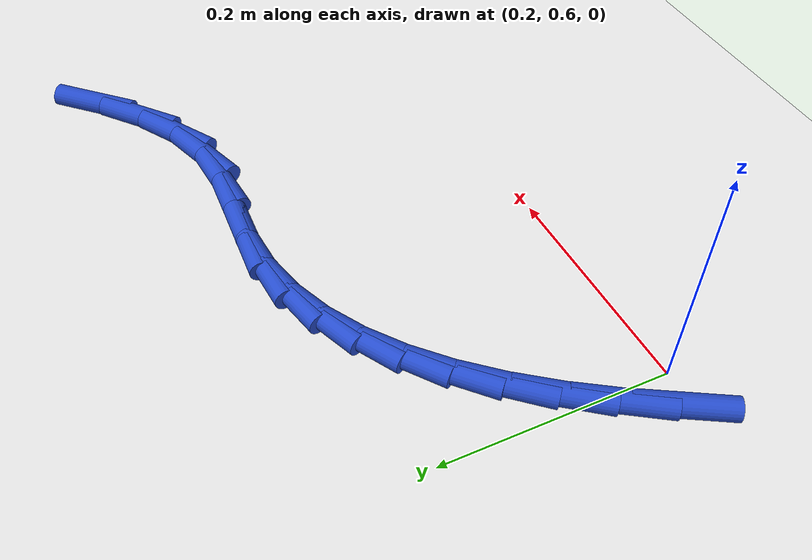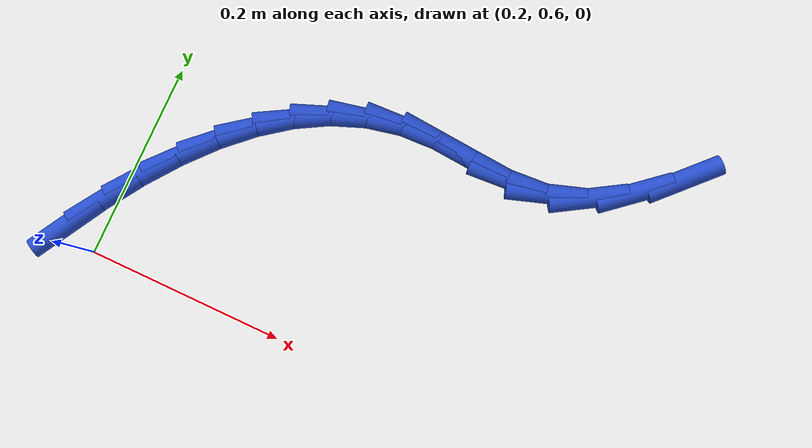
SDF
<sdf version="1.6">
 <world name="default">
  <model name="ground_plane">
   <static>1</static>
   <link name="link">
    <collision name="collision">
     <geometry><plane><normal>0 0 1</normal><size>100 100</size></plane></geometry>
     <surface><friction><ode><mu>100</mu><mu2>50</mu2></ode></friction></surface>
    </collision>
    <visual name="visual">
     <cast_shadows>0</cast_shadows>
     <geometry><plane><normal>0 0 1</normal><size>100 100</size></plane></geometry>
     <material>
      <script><uri>file://media/materials/scripts/gazebo.material</uri><name>Gazebo/WhiteGlow</name></script>
     </material>
    </visual>
   </link>
  </model>
  <model name="line">
   <link name="link_15">
    <pose>0.16536874746062305 0.6122908761863125 0.01 0 1.57 1.0538134935856716</pose>
    <collision name="collision">
     <geometry><cylinder><radius>0.01</radius><length>0.08</length></cylinder></geometry>
    </collision>
    <visual name="visual">
     <material>
      <script><name>Gazebo/Blue</name><uri>file://media/materials/scripts/gazebo.material</uri></script>
     </material>
     <geometry><cylinder><radius>0.01</radius><length>0.08</length></cylinder></geometry>
    </visual>
   </link>
   <link name="link_16">
    <pose>0.18751137461381603 0.6512358101997353 0.01 0 1.57 0.9973250395359933</pose>
    <collision name="collision">
     <geometry><cylinder><radius>0.01</radius><length>0.08</length></cylinder></geometry>
    </collision>
    <visual name="visual">
     <material>
      <script><name>Gazebo/Blue</name><uri>file://media/materials/scripts/gazebo.material</uri></script>
     </material>
     <geometry><cylinder><radius>0.01</radius><length>0.08</length></cylinder></geometry>
    </visual>
   </link>
   <link name="link_17">
    <pose>0.21118163012247643 0.6878840547240713 0.01 0 1.57 0.9309242295682887</pose>
    <collision name="collision">
     <geometry><cylinder><radius>0.01</radius><length>0.08</length></cylinder></geometry>
    </collision>
    <visual name="visual">
     <material>
      <script><name>Gazebo/Blue</name><uri>file://media/materials/scripts/gazebo.material</uri></script>
     </material>
     <geometry><cylinder><radius>0.01</radius><length>0.08</length></cylinder></geometry>
    </visual>
   </link>
   <link name="link_18">
    <pose>0.23641529351667828 0.721784547334497 0.01 0 1.57 0.8525406614608765</pose>
    <collision name="collision">
     <geometry><cylinder><radius>0.01</radius><length>0.08</length></cylinder></geometry>
    </collision>
    <visual name="visual">
     <material>
      <script><name>Gazebo/Blue</name><uri>file://media/materials/scripts/gazebo.material</uri></script>
     </material>
     <geometry><cylinder><radius>0.01</radius><length>0.08</length></cylinder></geometry>
    </visual>
   </link>
   <link name="link_19">
    <pose>0.26324814432649524 0.7524862256061877 0.01 0 1.57 0.7598989011711493</pose>
    <collision name="collision">
     <geometry><cylinder><radius>0.01</radius><length>0.08</length></cylinder></geometry>
    </collision>
    <visual name="visual">
     <material>
      <script><name>Gazebo/Blue</name><uri>file://media/materials/scripts/gazebo.material</uri></script>
     </material>
     <geometry><cylinder><radius>0.01</radius><length>0.08</length></cylinder></geometry>
    </visual>
   </link>
   <link name="link_20">
    <pose>0.291715962082001 0.7795380271143194 0.01 0 1.57 0.6508278332380614</pose>
    <collision name="collision">
     <geometry><cylinder><radius>0.01</radius><length>0.08</length></cylinder></geometry>
    </collision>
    <visual name="visual">
     <material>
      <script><name>Gazebo/Blue</name><uri>file://media/materials/scripts/gazebo.material</uri></script>
     </material>
     <geometry><cylinder><radius>0.01</radius><length>0.08</length></cylinder></geometry>
    </visual>
   </link>
   <link name="link_21">
    <pose>0.3218545263132693 0.8024888894340675 0.01 0 1.57 0.5239069931924972</pose>
    <collision name="collision">
     <geometry><cylinder><radius>0.01</radius><length>0.08</length></cylinder></geometry>
    </collision>
    <visual name="visual">
     <material>
      <script><name>Gazebo/Blue</name><uri>file://media/materials/scripts/gazebo.material</uri></script>
     </material>
     <geometry><cylinder><radius>0.01</radius><length>0.08</length></cylinder></geometry>
    </visual>
   </link>
   <link name="link_22">
    <pose>0.35369961655037385 0.8208877501406074 0.01 0 1.57 0.37950083316327315</pose>
    <collision name="collision">
     <geometry><cylinder><radius>0.01</radius><length>0.08</length></cylinder></geometry>
    </collision>
    <visual name="visual">
     <material>
      <script><name>Gazebo/Blue</name><uri>file://media/materials/scripts/gazebo.material</uri></script>
     </material>
     <geometry><cylinder><radius>0.01</radius><length>0.08</length></cylinder></geometry>
    </visual>
   </link>
   <link name="link_23">
    <pose>0.38728701232338847 0.8342835468091157 0.01 0 1.57 0.22089554611556805</pose>
    <collision name="collision">
     <geometry><cylinder><radius>0.01</radius><length>0.08</length></cylinder></geometry>
    </collision>
    <visual name="visual">
     <material>
      <script><name>Gazebo/Blue</name><uri>file://media/materials/scripts/gazebo.material</uri></script>
     </material>
     <geometry><cylinder><radius>0.01</radius><length>0.08</length></cylinder></geometry>
    </visual>
   </link>
   <link name="link_24">
    <pose>0.4226524931623869 0.8422252170147673 0.01 0 1.57 0.054821005684071646</pose>
    <collision name="collision">
     <geometry><cylinder><radius>0.01</radius><length>0.08</length></cylinder></geometry>
    </collision>
    <visual name="visual">
     <material>
      <script><name>Gazebo/Blue</name><uri>file://media/materials/scripts/gazebo.material</uri></script>
     </material>
     <geometry><cylinder><radius>0.01</radius><length>0.08</length></cylinder></geometry>
    </visual>
   </link>
   <link name="link_25">
    <pose>0.45983138267797696 0.8442654453996498 0.01 0 1.57 -0.07156752736981528</pose>
    <collision name="collision">
     <geometry><cylinder><radius>0.01</radius><length>0.08</length></cylinder></geometry>
    </collision>
    <visual name="visual">
     <material>
      <script><name>Gazebo/Blue</name><uri>file://media/materials/scripts/gazebo.material</uri></script>
     </material>
     <geometry><cylinder><radius>0.01</radius><length>0.08</length></cylinder></geometry>
    </visual>
   </link>
   <link name="link_26">
    <pose>0.49867358194314676 0.8414808494656638 0.01 0 1.57 -0.06698250012384967</pose>
    <collision name="collision">
     <geometry><cylinder><radius>0.01</radius><length>0.08</length></cylinder></geometry>
    </collision>
    <visual name="visual">
     <material>
      <script><name>Gazebo/Blue</name><uri>file://media/materials/scripts/gazebo.material</uri></script>
     </material>
     <geometry><cylinder><radius>0.01</radius><length>0.08</length></cylinder></geometry>
    </visual>
   </link>
   <link name="link_27">
    <pose>0.538559680865554 0.8388051760340717 0.01 0 1.57 0.07362799343613488</pose>
    <collision name="collision">
     <geometry><cylinder><radius>0.01</radius><length>0.08</length></cylinder></geometry>
    </collision>
    <visual name="visual">
     <material>
      <script><name>Gazebo/Blue</name><uri>file://media/materials/scripts/gazebo.material</uri></script>
     </material>
     <geometry><cylinder><radius>0.01</radius><length>0.08</length></cylinder></geometry>
    </visual>
   </link>
   <link name="link_28">
    <pose>0.5787971467343916 0.8417731450467943 0.01 0 1.57 0.3278715144154664</pose>
    <collision name="collision">
     <geometry><cylinder><radius>0.01</radius><length>0.08</length></cylinder></geometry>
    </collision>
    <visual name="visual">
     <material>
      <script><name>Gazebo/Blue</name><uri>file://media/materials/scripts/gazebo.material</uri></script>
     </material>
     <geometry><cylinder><radius>0.01</radius><length>0.08</length></cylinder></geometry>
    </visual>
   </link>
   <link name="link_29">
    <pose>0.6187249516236565 0.8553545235972684 0.01 0 1.57 0.5558149710328105</pose>
    <collision name="collision">
     <geometry><cylinder><radius>0.01</radius><length>0.08</length></cylinder></geometry>
    </collision>
    <visual name="visual">
     <material>
      <script><name>Gazebo/Blue</name><uri>file://media/materials/scripts/gazebo.material</uri></script>
     </material>
     <geometry><cylinder><radius>0.01</radius><length>0.08</length></cylinder></geometry>
    </visual>
   </link>
   <link name="link_30">
    <pose>0.6579497776390179 0.8797184256114372 0.01 0 1.57 0.7100531514031744</pose>
    <collision name="collision">
     <geometry><cylinder><radius>0.01</radius><length>0.08</length></cylinder></geometry>
    </collision>
    <visual name="visual">
     <material>
      <script><name>Gazebo/Blue</name><uri>file://media/materials/scripts/gazebo.material</uri></script>
     </material>
     <geometry><cylinder><radius>0.01</radius><length>0.08</length></cylinder></geometry>
    </visual>
   </link>
   <link name="link_31">
    <pose>0.6962134422620886 0.9126106786463484 0.01 0 1.57 0.8129848368860437</pose>
    <collision name="collision">
     <geometry><cylinder><radius>0.01</radius><length>0.08</length></cylinder></geometry>
    </collision>
    <visual name="visual">
     <material>
      <script><name>Gazebo/Blue</name><uri>file://media/materials/scripts/gazebo.material</uri></script>
     </material>
     <geometry><cylinder><radius>0.01</radius><length>0.08</length></cylinder></geometry>
    </visual>
   </link>
  </model>
 </world>
</sdf>
